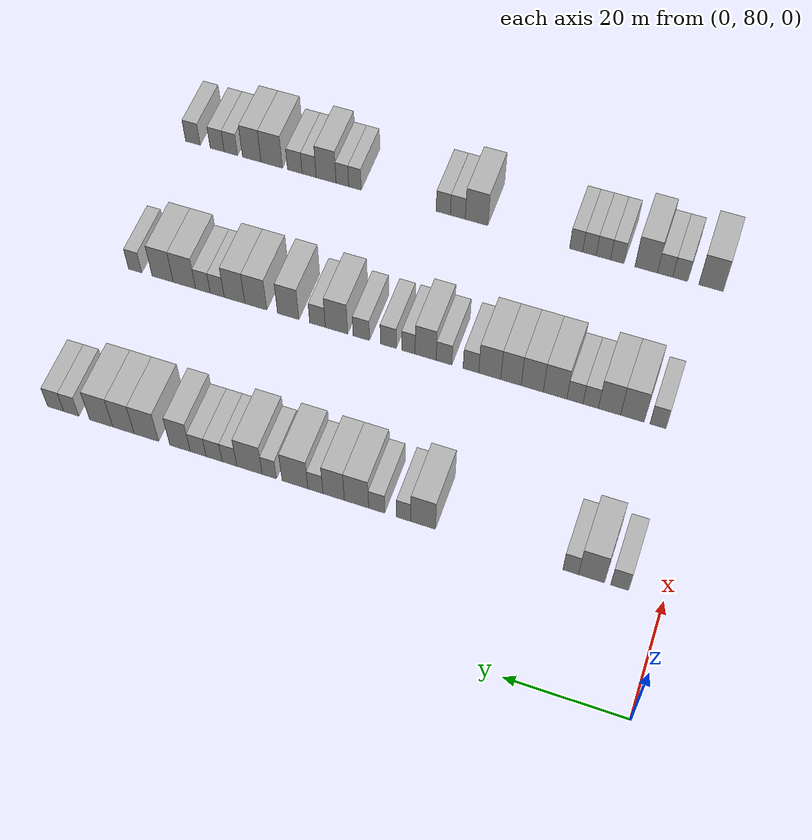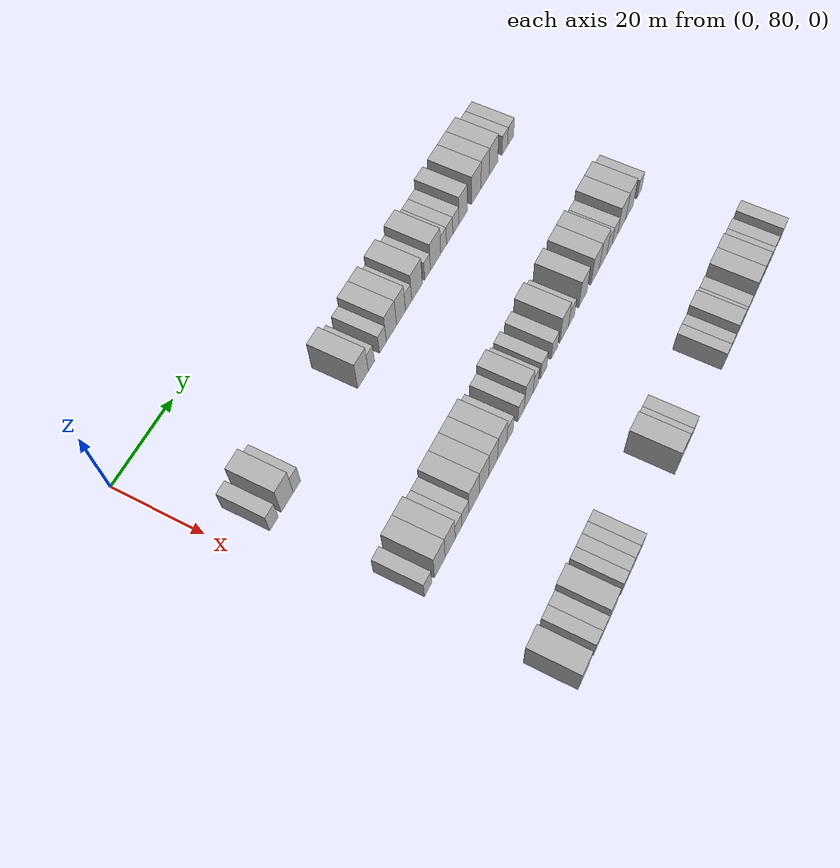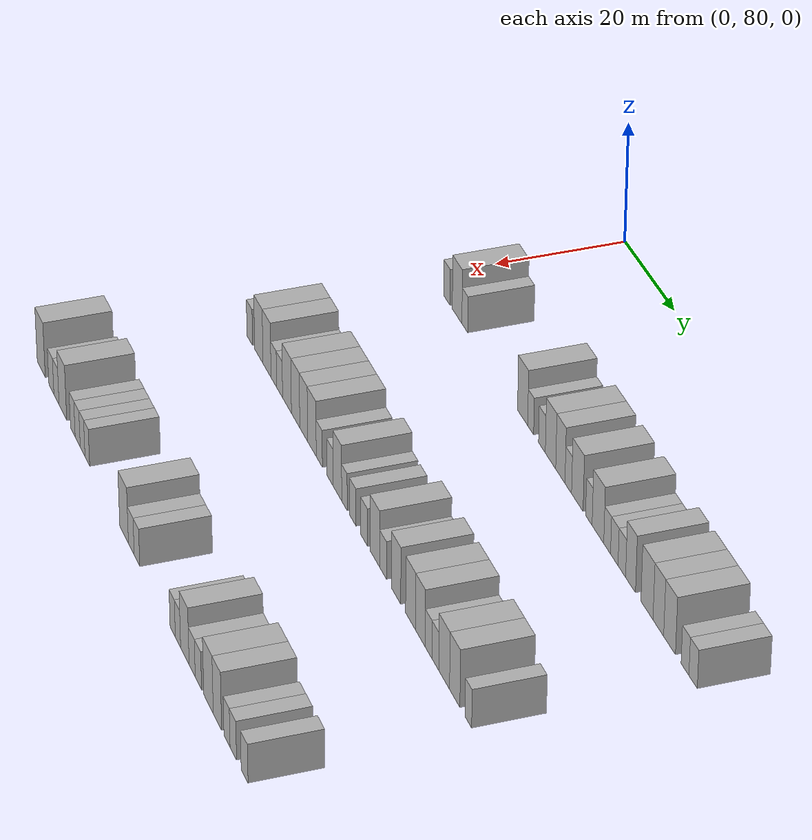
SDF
<sdf version="1.6">
 <world name="default">
  <model name="building_93">
   <static>1</static>
   <pose>25.0000 87.1373 0 0.000000 0.000000 0.000000</pose>
   <link name="link">
    <pose>0 0 3.00 0 0 0</pose>
    <collision name="collision"><geometry><box><size>10.0000 2.8961 6.0000</size></box></geometry></collision>
    <visual name="visual">
     <cast_shadows>0</cast_shadows>
     <geometry><box><size>10.0000 2.8961 6.0000</size></box></geometry>
     <material>
      <script>
       <uri>model://HANNAS_wall/materials/scripts</uri>
       <uri>model://HANNAS_wall/materials/textures</uri>
       <name>vrc/HANNAS_wall</name>
      </script>
     </material>
    </visual>
   </link>
  </model>
  <model name="building_94">
   <static>1</static>
   <pose>25.0000 91.6928 0 0.000000 0.000000 0.000000</pose>
   <link name="link">
    <pose>0 0 4.50 0 0 0</pose>
    <collision name="collision"><geometry><box><size>10.0000 4.2150 9.0000</size></box></geometry></collision>
    <visual name="visual">
     <cast_shadows>0</cast_shadows>
     <geometry><box><size>10.0000 4.2150 9.0000</size></box></geometry>
     <material>
      <script>
       <uri>model://HANNAS_wall/materials/scripts</uri>
       <uri>model://HANNAS_wall/materials/textures</uri>
       <name>vrc/HANNAS_wall</name>
      </script>
     </material>
    </visual>
   </link>
  </model>
  <model name="building_95">
   <static>1</static>
   <pose>25.0000 95.0808 0 0.000000 0.000000 0.000000</pose>
   <link name="link">
    <pose>0 0 3.00 0 0 0</pose>
    <collision name="collision"><geometry><box><size>10.0000 2.5612 6.0000</size></box></geometry></collision>
    <visual name="visual">
     <cast_shadows>0</cast_shadows>
     <geometry><box><size>10.0000 2.5612 6.0000</size></box></geometry>
     <material>
      <script>
       <uri>model://HANNAS_wall/materials/scripts</uri>
       <uri>model://HANNAS_wall/materials/textures</uri>
       <name>vrc/HANNAS_wall</name>
      </script>
     </material>
    </visual>
   </link>
  </model>
  <model name="building_96">
   <static>1</static>
   <pose>25.0000 119.5872 0 0.000000 0.000000 0.000000</pose>
   <link name="link">
    <pose>0 0 4.50 0 0 0</pose>
    <collision name="collision"><geometry><box><size>10.0000 4.1505 9.0000</size></box></geometry></collision>
    <visual name="visual">
     <cast_shadows>0</cast_shadows>
     <geometry><box><size>10.0000 4.1505 9.0000</size></box></geometry>
     <material>
      <script>
       <uri>model://HANNAS_wall/materials/scripts</uri>
       <uri>model://HANNAS_wall/materials/textures</uri>
       <name>vrc/HANNAS_wall</name>
      </script>
     </material>
    </visual>
   </link>
  </model>
  <model name="building_97">
   <static>1</static>
   <pose>25.0000 122.8813 0 0.000000 0.000000 0.000000</pose>
   <link name="link">
    <pose>0 0 3.00 0 0 0</pose>
    <collision name="collision"><geometry><box><size>10.0000 2.4377 6.0000</size></box></geometry></collision>
    <visual name="visual">
     <cast_shadows>0</cast_shadows>
     <geometry><box><size>10.0000 2.4377 6.0000</size></box></geometry>
     <material>
      <script>
       <uri>model://HANNAS_wall/materials/scripts</uri>
       <uri>model://HANNAS_wall/materials/textures</uri>
       <name>vrc/HANNAS_wall</name>
      </script>
     </material>
    </visual>
   </link>
  </model>
  <model name="building_98">
   <static>1</static>
   <pose>25.0000 127.4716 0 0.000000 0.000000 0.000000</pose>
   <link name="link">
    <pose>0 0 3.00 0 0 0</pose>
    <collision name="collision"><geometry><box><size>10.0000 2.7429 6.0000</size></box></geometry></collision>
    <visual name="visual">
     <cast_shadows>0</cast_shadows>
     <geometry><box><size>10.0000 2.7429 6.0000</size></box></geometry>
     <material>
      <script>
       <uri>model://HANNAS_wall/materials/scripts</uri>
       <uri>model://HANNAS_wall/materials/textures</uri>
       <name>vrc/HANNAS_wall</name>
      </script>
     </material>
    </visual>
   </link>
  </model>
  <model name="building_99">
   <static>1</static>
   <pose>25.0000 130.9281 0 0.000000 0.000000 0.000000</pose>
   <link name="link">
    <pose>0 0 4.50 0 0 0</pose>
    <collision name="collision"><geometry><box><size>10.0000 4.1701 9.0000</size></box></geometry></collision>
    <visual name="visual">
     <cast_shadows>0</cast_shadows>
     <geometry><box><size>10.0000 4.1701 9.0000</size></box></geometry>
     <material>
      <script>
       <uri>model://HANNAS_wall/materials/scripts</uri>
       <uri>model://HANNAS_wall/materials/textures</uri>
       <name>vrc/HANNAS_wall</name>
      </script>
     </material>
    </visual>
   </link>
  </model>
  <model name="building_100">
   <static>1</static>
   <pose>25.0000 134.8508 0 0.000000 0.000000 0.000000</pose>
   <link name="link">
    <pose>0 0 4.50 0 0 0</pose>
    <collision name="collision"><geometry><box><size>10.0000 3.6753 9.0000</size></box></geometry></collision>
    <visual name="visual">
     <cast_shadows>0</cast_shadows>
     <geometry><box><size>10.0000 3.6753 9.0000</size></box></geometry>
     <material>
      <script>
       <uri>model://HANNAS_wall/materials/scripts</uri>
       <uri>model://HANNAS_wall/materials/textures</uri>
       <name>vrc/HANNAS_wall</name>
      </script>
     </material>
    </visual>
   </link>
  </model>
  <model name="building_101">
   <static>1</static>
   <pose>25.0000 137.9873 0 0.000000 0.000000 0.000000</pose>
   <link name="link">
    <pose>0 0 3.00 0 0 0</pose>
    <collision name="collision"><geometry><box><size>10.0000 2.5976 6.0000</size></box></geometry></collision>
    <visual name="visual">
     <cast_shadows>0</cast_shadows>
     <geometry><box><size>10.0000 2.5976 6.0000</size></box></geometry>
     <material>
      <script>
       <uri>model://HANNAS_wall/materials/scripts</uri>
       <uri>model://HANNAS_wall/materials/textures</uri>
       <name>vrc/HANNAS_wall</name>
      </script>
     </material>
    </visual>
   </link>
  </model>
  <model name="building_102">
   <static>1</static>
   <pose>25.0000 141.5338 0 0.000000 0.000000 0.000000</pose>
   <link name="link">
    <pose>0 0 4.50 0 0 0</pose>
    <collision name="collision"><geometry><box><size>10.0000 4.4953 9.0000</size></box></geometry></collision>
    <visual name="visual">
     <cast_shadows>0</cast_shadows>
     <geometry><box><size>10.0000 4.4953 9.0000</size></box></geometry>
     <material>
      <script>
       <uri>model://HANNAS_wall/materials/scripts</uri>
       <uri>model://HANNAS_wall/materials/textures</uri>
       <name>vrc/HANNAS_wall</name>
      </script>
     </material>
    </visual>
   </link>
  </model>
  <model name="building_103">
   <static>1</static>
   <pose>25.0000 146.0297 0 0.000000 0.000000 0.000000</pose>
   <link name="link">
    <pose>0 0 3.00 0 0 0</pose>
    <collision name="collision"><geometry><box><size>10.0000 2.4965 6.0000</size></box></geometry></collision>
    <visual name="visual">
     <cast_shadows>0</cast_shadows>
     <geometry><box><size>10.0000 2.4965 6.0000</size></box></geometry>
     <material>
      <script>
       <uri>model://HANNAS_wall/materials/scripts</uri>
       <uri>model://HANNAS_wall/materials/textures</uri>
       <name>vrc/HANNAS_wall</name>
      </script>
     </material>
    </visual>
   </link>
  </model>
  <model name="building_104">
   <static>1</static>
   <pose>25.0000 149.5130 0 0.000000 0.000000 0.000000</pose>
   <link name="link">
    <pose>0 0 4.50 0 0 0</pose>
    <collision name="collision"><geometry><box><size>10.0000 4.4702 9.0000</size></box></geometry></collision>
    <visual name="visual">
     <cast_shadows>0</cast_shadows>
     <geometry><box><size>10.0000 4.4702 9.0000</size></box></geometry>
     <material>
      <script>
       <uri>model://HANNAS_wall/materials/scripts</uri>
       <uri>model://HANNAS_wall/materials/textures</uri>
       <name>vrc/HANNAS_wall</name>
      </script>
     </material>
    </visual>
   </link>
  </model>
  <model name="building_105">
   <static>1</static>
   <pose>25.0000 153.0343 0 0.000000 0.000000 0.000000</pose>
   <link name="link">
    <pose>0 0 3.00 0 0 0</pose>
    <collision name="collision"><geometry><box><size>10.0000 2.5722 6.0000</size></box></geometry></collision>
    <visual name="visual">
     <cast_shadows>0</cast_shadows>
     <geometry><box><size>10.0000 2.5722 6.0000</size></box></geometry>
     <material>
      <script>
       <uri>model://HANNAS_wall/materials/scripts</uri>
       <uri>model://HANNAS_wall/materials/textures</uri>
       <name>vrc/HANNAS_wall</name>
      </script>
     </material>
    </visual>
   </link>
  </model>
  <model name="building_106">
   <static>1</static>
   <pose>25.0000 155.7408 0 0.000000 0.000000 0.000000</pose>
   <link name="link">
    <pose>0 0 3.00 0 0 0</pose>
    <collision name="collision"><geometry><box><size>10.0000 2.8409 6.0000</size></box></geometry></collision>
    <visual name="visual">
     <cast_shadows>0</cast_shadows>
     <geometry><box><size>10.0000 2.8409 6.0000</size></box></geometry>
     <material>
      <script>
       <uri>model://HANNAS_wall/materials/scripts</uri>
       <uri>model://HANNAS_wall/materials/textures</uri>
       <name>vrc/HANNAS_wall</name>
      </script>
     </material>
    </visual>
   </link>
  </model>
  <model name="building_107">
   <static>1</static>
   <pose>25.0000 158.5754 0 0.000000 0.000000 0.000000</pose>
   <link name="link">
    <pose>0 0 3.00 0 0 0</pose>
    <collision name="collision"><geometry><box><size>10.0000 2.8282 6.0000</size></box></geometry></collision>
    <visual name="visual">
     <cast_shadows>0</cast_shadows>
     <geometry><box><size>10.0000 2.8282 6.0000</size></box></geometry>
     <material>
      <script>
       <uri>model://HANNAS_wall/materials/scripts</uri>
       <uri>model://HANNAS_wall/materials/textures</uri>
       <name>vrc/HANNAS_wall</name>
      </script>
     </material>
    </visual>
   </link>
  </model>
  <model name="building_108">
   <static>1</static>
   <pose>25.0000 161.8272 0 0.000000 0.000000 0.000000</pose>
   <link name="link">
    <pose>0 0 4.50 0 0 0</pose>
    <collision name="collision"><geometry><box><size>10.0000 3.6753 9.0000</size></box></geometry></collision>
    <visual name="visual">
     <cast_shadows>0</cast_shadows>
     <geometry><box><size>10.0000 3.6753 9.0000</size></box></geometry>
     <material>
      <script>
       <uri>model://HANNAS_wall/materials/scripts</uri>
       <uri>model://HANNAS_wall/materials/textures</uri>
       <name>vrc/HANNAS_wall</name>
      </script>
     </material>
    </visual>
   </link>
  </model>
  <model name="building_109">
   <static>1</static>
   <pose>25.0000 167.8753 0 0.000000 0.000000 0.000000</pose>
   <link name="link">
    <pose>0 0 4.50 0 0 0</pose>
    <collision name="collision"><geometry><box><size>10.0000 4.4208 9.0000</size></box></geometry></collision>
    <visual name="visual">
     <cast_shadows>0</cast_shadows>
     <geometry><box><size>10.0000 4.4208 9.0000</size></box></geometry>
     <material>
      <script>
       <uri>model://HANNAS_wall/materials/scripts</uri>
       <uri>model://HANNAS_wall/materials/textures</uri>
       <name>vrc/HANNAS_wall</name>
      </script>
     </material>
    </visual>
   </link>
  </model>
  <model name="building_110">
   <static>1</static>
   <pose>25.0000 172.0205 0 0.000000 0.000000 0.000000</pose>
   <link name="link">
    <pose>0 0 4.50 0 0 0</pose>
    <collision name="collision"><geometry><box><size>10.0000 3.8697 9.0000</size></box></geometry></collision>
    <visual name="visual">
     <cast_shadows>0</cast_shadows>
     <geometry><box><size>10.0000 3.8697 9.0000</size></box></geometry>
     <material>
      <script>
       <uri>model://HANNAS_wall/materials/scripts</uri>
       <uri>model://HANNAS_wall/materials/textures</uri>
       <name>vrc/HANNAS_wall</name>
      </script>
     </material>
    </visual>
   </link>
  </model>
  <model name="building_111">
   <static>1</static>
   <pose>25.0000 176.0696 0 0.000000 0.000000 0.000000</pose>
   <link name="link">
    <pose>0 0 4.50 0 0 0</pose>
    <collision name="collision"><geometry><box><size>10.0000 4.2285 9.0000</size></box></geometry></collision>
    <visual name="visual">
     <cast_shadows>0</cast_shadows>
     <geometry><box><size>10.0000 4.2285 9.0000</size></box></geometry>
     <material>
      <script>
       <uri>model://HANNAS_wall/materials/scripts</uri>
       <uri>model://HANNAS_wall/materials/textures</uri>
       <name>vrc/HANNAS_wall</name>
      </script>
     </material>
    </visual>
   </link>
  </model>
  <model name="building_112">
   <static>1</static>
   <pose>25.0000 181.5627 0 0.000000 0.000000 0.000000</pose>
   <link name="link">
    <pose>0 0 3.00 0 0 0</pose>
    <collision name="collision"><geometry><box><size>10.0000 2.7576 6.0000</size></box></geometry></collision>
    <visual name="visual">
     <cast_shadows>0</cast_shadows>
     <geometry><box><size>10.0000 2.7576 6.0000</size></box></geometry>
     <material>
      <script>
       <uri>model://HANNAS_wall/materials/scripts</uri>
       <uri>model://HANNAS_wall/materials/textures</uri>
       <name>vrc/HANNAS_wall</name>
      </script>
     </material>
    </visual>
   </link>
  </model>
  <model name="building_113">
   <static>1</static>
   <pose>25.0000 184.4228 0 0.000000 0.000000 0.000000</pose>
   <link name="link">
    <pose>0 0 3.00 0 0 0</pose>
    <collision name="collision"><geometry><box><size>10.0000 2.9626 6.0000</size></box></geometry></collision>
    <visual name="visual">
     <cast_shadows>0</cast_shadows>
     <geometry><box><size>10.0000 2.9626 6.0000</size></box></geometry>
     <material>
      <script>
       <uri>model://HANNAS_wall/materials/scripts</uri>
       <uri>model://HANNAS_wall/materials/textures</uri>
       <name>vrc/HANNAS_wall</name>
      </script>
     </material>
    </visual>
   </link>
  </model>
  <model name="building_226">
   <static>1</static>
   <pose>55.0000 88.6630 0 0.000000 0.000000 0.000000</pose>
   <link name="link">
    <pose>0 0 3.00 0 0 0</pose>
    <collision name="collision"><geometry><box><size>10.0000 2.7535 6.0000</size></box></geometry></collision>
    <visual name="visual">
     <cast_shadows>0</cast_shadows>
     <geometry><box><size>10.0000 2.7535 6.0000</size></box></geometry>
     <material>
      <script>
       <uri>model://HANNAS_wall/materials/scripts</uri>
       <uri>model://HANNAS_wall/materials/textures</uri>
       <name>vrc/HANNAS_wall</name>
      </script>
     </material>
    </visual>
   </link>
  </model>
  <model name="building_227">
   <static>1</static>
   <pose>55.0000 93.0524 0 0.000000 0.000000 0.000000</pose>
   <link name="link">
    <pose>0 0 4.50 0 0 0</pose>
    <collision name="collision"><geometry><box><size>10.0000 4.0254 9.0000</size></box></geometry></collision>
    <visual name="visual">
     <cast_shadows>0</cast_shadows>
     <geometry><box><size>10.0000 4.0254 9.0000</size></box></geometry>
     <material>
      <script>
       <uri>model://HANNAS_wall/materials/scripts</uri>
       <uri>model://HANNAS_wall/materials/textures</uri>
       <name>vrc/HANNAS_wall</name>
      </script>
     </material>
    </visual>
   </link>
  </model>
  <model name="building_228">
   <static>1</static>
   <pose>55.0000 96.9843 0 0.000000 0.000000 0.000000</pose>
   <link name="link">
    <pose>0 0 4.50 0 0 0</pose>
    <collision name="collision"><geometry><box><size>10.0000 3.8385 9.0000</size></box></geometry></collision>
    <visual name="visual">
     <cast_shadows>0</cast_shadows>
     <geometry><box><size>10.0000 3.8385 9.0000</size></box></geometry>
     <material>
      <script>
       <uri>model://HANNAS_wall/materials/scripts</uri>
       <uri>model://HANNAS_wall/materials/textures</uri>
       <name>vrc/HANNAS_wall</name>
      </script>
     </material>
    </visual>
   </link>
  </model>
  <model name="building_229">
   <static>1</static>
   <pose>55.0000 100.2398 0 0.000000 0.000000 0.000000</pose>
   <link name="link">
    <pose>0 0 3.00 0 0 0</pose>
    <collision name="collision"><geometry><box><size>10.0000 2.6724 6.0000</size></box></geometry></collision>
    <visual name="visual">
     <cast_shadows>0</cast_shadows>
     <geometry><box><size>10.0000 2.6724 6.0000</size></box></geometry>
     <material>
      <script>
       <uri>model://HANNAS_wall/materials/scripts</uri>
       <uri>model://HANNAS_wall/materials/textures</uri>
       <name>vrc/HANNAS_wall</name>
      </script>
     </material>
    </visual>
   </link>
  </model>
  <model name="building_230">
   <static>1</static>
   <pose>55.0000 102.9791 0 0.000000 0.000000 0.000000</pose>
   <link name="link">
    <pose>0 0 3.00 0 0 0</pose>
    <collision name="collision"><geometry><box><size>10.0000 2.8063 6.0000</size></box></geometry></collision>
    <visual name="visual">
     <cast_shadows>0</cast_shadows>
     <geometry><box><size>10.0000 2.8063 6.0000</size></box></geometry>
     <material>
      <script>
       <uri>model://HANNAS_wall/materials/scripts</uri>
       <uri>model://HANNAS_wall/materials/textures</uri>
       <name>vrc/HANNAS_wall</name>
      </script>
     </material>
    </visual>
   </link>
  </model>
  <model name="building_231">
   <static>1</static>
   <pose>55.0000 106.4501 0 0.000000 0.000000 0.000000</pose>
   <link name="link">
    <pose>0 0 4.50 0 0 0</pose>
    <collision name="collision"><geometry><box><size>10.0000 4.1358 9.0000</size></box></geometry></collision>
    <visual name="visual">
     <cast_shadows>0</cast_shadows>
     <geometry><box><size>10.0000 4.1358 9.0000</size></box></geometry>
     <material>
      <script>
       <uri>model://HANNAS_wall/materials/scripts</uri>
       <uri>model://HANNAS_wall/materials/textures</uri>
       <name>vrc/HANNAS_wall</name>
      </script>
     </material>
    </visual>
   </link>
  </model>
  <model name="building_232">
   <static>1</static>
   <pose>55.0000 110.4618 0 0.000000 0.000000 0.000000</pose>
   <link name="link">
    <pose>0 0 4.50 0 0 0</pose>
    <collision name="collision"><geometry><box><size>10.0000 3.8875 9.0000</size></box></geometry></collision>
    <visual name="visual">
     <cast_shadows>0</cast_shadows>
     <geometry><box><size>10.0000 3.8875 9.0000</size></box></geometry>
     <material>
      <script>
       <uri>model://HANNAS_wall/materials/scripts</uri>
       <uri>model://HANNAS_wall/materials/textures</uri>
       <name>vrc/HANNAS_wall</name>
      </script>
     </material>
    </visual>
   </link>
  </model>
  <model name="building_233">
   <static>1</static>
   <pose>55.0000 114.2141 0 0.000000 0.000000 0.000000</pose>
   <link name="link">
    <pose>0 0 4.50 0 0 0</pose>
    <collision name="collision"><geometry><box><size>10.0000 3.6172 9.0000</size></box></geometry></collision>
    <visual name="visual">
     <cast_shadows>0</cast_shadows>
     <geometry><box><size>10.0000 3.6172 9.0000</size></box></geometry>
     <material>
      <script>
       <uri>model://HANNAS_wall/materials/scripts</uri>
       <uri>model://HANNAS_wall/materials/textures</uri>
       <name>vrc/HANNAS_wall</name>
      </script>
     </material>
    </visual>
   </link>
  </model>
  <model name="building_234">
   <static>1</static>
   <pose>55.0000 117.9746 0 0.000000 0.000000 0.000000</pose>
   <link name="link">
    <pose>0 0 4.50 0 0 0</pose>
    <collision name="collision"><geometry><box><size>10.0000 3.9037 9.0000</size></box></geometry></collision>
    <visual name="visual">
     <cast_shadows>0</cast_shadows>
     <geometry><box><size>10.0000 3.9037 9.0000</size></box></geometry>
     <material>
      <script>
       <uri>model://HANNAS_wall/materials/scripts</uri>
       <uri>model://HANNAS_wall/materials/textures</uri>
       <name>vrc/HANNAS_wall</name>
      </script>
     </material>
    </visual>
   </link>
  </model>
  <model name="building_235">
   <static>1</static>
   <pose>55.0000 121.3089 0 0.000000 0.000000 0.000000</pose>
   <link name="link">
    <pose>0 0 3.00 0 0 0</pose>
    <collision name="collision"><geometry><box><size>10.0000 2.7649 6.0000</size></box></geometry></collision>
    <visual name="visual">
     <cast_shadows>0</cast_shadows>
     <geometry><box><size>10.0000 2.7649 6.0000</size></box></geometry>
     <material>
      <script>
       <uri>model://HANNAS_wall/materials/scripts</uri>
       <uri>model://HANNAS_wall/materials/textures</uri>
       <name>vrc/HANNAS_wall</name>
      </script>
     </material>
    </visual>
   </link>
  </model>
  <model name="building_236">
   <static>1</static>
   <pose>55.0000 126.1008 0 0.000000 0.000000 0.000000</pose>
   <link name="link">
    <pose>0 0 3.00 0 0 0</pose>
    <collision name="collision"><geometry><box><size>10.0000 2.8190 6.0000</size></box></geometry></collision>
    <visual name="visual">
     <cast_shadows>0</cast_shadows>
     <geometry><box><size>10.0000 2.8190 6.0000</size></box></geometry>
     <material>
      <script>
       <uri>model://HANNAS_wall/materials/scripts</uri>
       <uri>model://HANNAS_wall/materials/textures</uri>
       <name>vrc/HANNAS_wall</name>
      </script>
     </material>
    </visual>
   </link>
  </model>
  <model name="building_237">
   <static>1</static>
   <pose>55.0000 129.4103 0 0.000000 0.000000 0.000000</pose>
   <link name="link">
    <pose>0 0 4.50 0 0 0</pose>
    <collision name="collision"><geometry><box><size>10.0000 3.7999 9.0000</size></box></geometry></collision>
    <visual name="visual">
     <cast_shadows>0</cast_shadows>
     <geometry><box><size>10.0000 3.7999 9.0000</size></box></geometry>
     <material>
      <script>
       <uri>model://HANNAS_wall/materials/scripts</uri>
       <uri>model://HANNAS_wall/materials/textures</uri>
       <name>vrc/HANNAS_wall</name>
      </script>
     </material>
    </visual>
   </link>
  </model>
  <model name="building_238">
   <static>1</static>
   <pose>55.0000 132.5195 0 0.000000 0.000000 0.000000</pose>
   <link name="link">
    <pose>0 0 3.00 0 0 0</pose>
    <collision name="collision"><geometry><box><size>10.0000 2.4186 6.0000</size></box></geometry></collision>
    <visual name="visual">
     <cast_shadows>0</cast_shadows>
     <geometry><box><size>10.0000 2.4186 6.0000</size></box></geometry>
     <material>
      <script>
       <uri>model://HANNAS_wall/materials/scripts</uri>
       <uri>model://HANNAS_wall/materials/textures</uri>
       <name>vrc/HANNAS_wall</name>
      </script>
     </material>
    </visual>
   </link>
  </model>
  <model name="building_239">
   <static>1</static>
   <pose>55.0000 136.1524 0 0.000000 0.000000 0.000000</pose>
   <link name="link">
    <pose>0 0 3.00 0 0 0</pose>
    <collision name="collision"><geometry><box><size>10.0000 2.8471 6.0000</size></box></geometry></collision>
    <visual name="visual">
     <cast_shadows>0</cast_shadows>
     <geometry><box><size>10.0000 2.8471 6.0000</size></box></geometry>
     <material>
      <script>
       <uri>model://HANNAS_wall/materials/scripts</uri>
       <uri>model://HANNAS_wall/materials/textures</uri>
       <name>vrc/HANNAS_wall</name>
      </script>
     </material>
    </visual>
   </link>
  </model>
  <model name="building_240">
   <static>1</static>
   <pose>55.0000 141.0695 0 0.000000 0.000000 0.000000</pose>
   <link name="link">
    <pose>0 0 3.00 0 0 0</pose>
    <collision name="collision"><geometry><box><size>10.0000 2.9872 6.0000</size></box></geometry></collision>
    <visual name="visual">
     <cast_shadows>0</cast_shadows>
     <geometry><box><size>10.0000 2.9872 6.0000</size></box></geometry>
     <material>
      <script>
       <uri>model://HANNAS_wall/materials/scripts</uri>
       <uri>model://HANNAS_wall/materials/textures</uri>
       <name>vrc/HANNAS_wall</name>
      </script>
     </material>
    </visual>
   </link>
  </model>
  <model name="building_241">
   <static>1</static>
   <pose>55.0000 145.6155 0 0.000000 0.000000 0.000000</pose>
   <link name="link">
    <pose>0 0 4.50 0 0 0</pose>
    <collision name="collision"><geometry><box><size>10.0000 4.1048 9.0000</size></box></geometry></collision>
    <visual name="visual">
     <cast_shadows>0</cast_shadows>
     <geometry><box><size>10.0000 4.1048 9.0000</size></box></geometry>
     <material>
      <script>
       <uri>model://HANNAS_wall/materials/scripts</uri>
       <uri>model://HANNAS_wall/materials/textures</uri>
       <name>vrc/HANNAS_wall</name>
      </script>
     </material>
    </visual>
   </link>
  </model>
  <model name="building_242">
   <static>1</static>
   <pose>55.0000 149.1084 0 0.000000 0.000000 0.000000</pose>
   <link name="link">
    <pose>0 0 3.00 0 0 0</pose>
    <collision name="collision"><geometry><box><size>10.0000 2.8810 6.0000</size></box></geometry></collision>
    <visual name="visual">
     <cast_shadows>0</cast_shadows>
     <geometry><box><size>10.0000 2.8810 6.0000</size></box></geometry>
     <material>
      <script>
       <uri>model://HANNAS_wall/materials/scripts</uri>
       <uri>model://HANNAS_wall/materials/textures</uri>
       <name>vrc/HANNAS_wall</name>
      </script>
     </material>
    </visual>
   </link>
  </model>
  <model name="building_243">
   <static>1</static>
   <pose>55.0000 154.5390 0 0.000000 0.000000 0.000000</pose>
   <link name="link">
    <pose>0 0 4.50 0 0 0</pose>
    <collision name="collision"><geometry><box><size>10.0000 3.9802 9.0000</size></box></geometry></collision>
    <visual name="visual">
     <cast_shadows>0</cast_shadows>
     <geometry><box><size>10.0000 3.9802 9.0000</size></box></geometry>
     <material>
      <script>
       <uri>model://HANNAS_wall/materials/scripts</uri>
       <uri>model://HANNAS_wall/materials/textures</uri>
       <name>vrc/HANNAS_wall</name>
      </script>
     </material>
    </visual>
   </link>
  </model>
  <model name="building_244">
   <static>1</static>
   <pose>55.0000 160.5846 0 0.000000 0.000000 0.000000</pose>
   <link name="link">
    <pose>0 0 4.50 0 0 0</pose>
    <collision name="collision"><geometry><box><size>10.0000 4.1109 9.0000</size></box></geometry></collision>
    <visual name="visual">
     <cast_shadows>0</cast_shadows>
     <geometry><box><size>10.0000 4.1109 9.0000</size></box></geometry>
     <material>
      <script>
       <uri>model://HANNAS_wall/materials/scripts</uri>
       <uri>model://HANNAS_wall/materials/textures</uri>
       <name>vrc/HANNAS_wall</name>
      </script>
     </material>
    </visual>
   </link>
  </model>
  <model name="building_245">
   <static>1</static>
   <pose>55.0000 164.5902 0 0.000000 0.000000 0.000000</pose>
   <link name="link">
    <pose>0 0 4.50 0 0 0</pose>
    <collision name="collision"><geometry><box><size>10.0000 3.9003 9.0000</size></box></geometry></collision>
    <visual name="visual">
     <cast_shadows>0</cast_shadows>
     <geometry><box><size>10.0000 3.9003 9.0000</size></box></geometry>
     <material>
      <script>
       <uri>model://HANNAS_wall/materials/scripts</uri>
       <uri>model://HANNAS_wall/materials/textures</uri>
       <name>vrc/HANNAS_wall</name>
      </script>
     </material>
    </visual>
   </link>
  </model>
  <model name="building_246">
   <static>1</static>
   <pose>55.0000 167.8611 0 0.000000 0.000000 0.000000</pose>
   <link name="link">
    <pose>0 0 3.00 0 0 0</pose>
    <collision name="collision"><geometry><box><size>10.0000 2.6415 6.0000</size></box></geometry></collision>
    <visual name="visual">
     <cast_shadows>0</cast_shadows>
     <geometry><box><size>10.0000 2.6415 6.0000</size></box></geometry>
     <material>
      <script>
       <uri>model://HANNAS_wall/materials/scripts</uri>
       <uri>model://HANNAS_wall/materials/textures</uri>
       <name>vrc/HANNAS_wall</name>
      </script>
     </material>
    </visual>
   </link>
  </model>
  <model name="building_247">
   <static>1</static>
   <pose>55.0000 170.5727 0 0.000000 0.000000 0.000000</pose>
   <link name="link">
    <pose>0 0 3.00 0 0 0</pose>
    <collision name="collision"><geometry><box><size>10.0000 2.7818 6.0000</size></box></geometry></collision>
    <visual name="visual">
     <cast_shadows>0</cast_shadows>
     <geometry><box><size>10.0000 2.7818 6.0000</size></box></geometry>
     <material>
      <script>
       <uri>model://HANNAS_wall/materials/scripts</uri>
       <uri>model://HANNAS_wall/materials/textures</uri>
       <name>vrc/HANNAS_wall</name>
      </script>
     </material>
    </visual>
   </link>
  </model>
  <model name="building_248">
   <static>1</static>
   <pose>55.0000 174.0974 0 0.000000 0.000000 0.000000</pose>
   <link name="link">
    <pose>0 0 4.50 0 0 0</pose>
    <collision name="collision"><geometry><box><size>10.0000 4.2675 9.0000</size></box></geometry></collision>
    <visual name="visual">
     <cast_shadows>0</cast_shadows>
     <geometry><box><size>10.0000 4.2675 9.0000</size></box></geometry>
     <material>
      <script>
       <uri>model://HANNAS_wall/materials/scripts</uri>
       <uri>model://HANNAS_wall/materials/textures</uri>
       <name>vrc/HANNAS_wall</name>
      </script>
     </material>
    </visual>
   </link>
  </model>
  <model name="building_249">
   <static>1</static>
   <pose>55.0000 178.2537 0 0.000000 0.000000 0.000000</pose>
   <link name="link">
    <pose>0 0 4.50 0 0 0</pose>
    <collision name="collision"><geometry><box><size>10.0000 4.0451 9.0000</size></box></geometry></collision>
    <visual name="visual">
     <cast_shadows>0</cast_shadows>
     <geometry><box><size>10.0000 4.0451 9.0000</size></box></geometry>
     <material>
      <script>
       <uri>model://HANNAS_wall/materials/scripts</uri>
       <uri>model://HANNAS_wall/materials/textures</uri>
       <name>vrc/HANNAS_wall</name>
      </script>
     </material>
    </visual>
   </link>
  </model>
  <model name="building_250">
   <static>1</static>
   <pose>55.0000 183.5476 0 0.000000 0.000000 0.000000</pose>
   <link name="link">
    <pose>0 0 3.00 0 0 0</pose>
    <collision name="collision"><geometry><box><size>10.0000 2.5427 6.0000</size></box></geometry></collision>
    <visual name="visual">
     <cast_shadows>0</cast_shadows>
     <geometry><box><size>10.0000 2.5427 6.0000</size></box></geometry>
     <material>
      <script>
       <uri>model://HANNAS_wall/materials/scripts</uri>
       <uri>model://HANNAS_wall/materials/textures</uri>
       <name>vrc/HANNAS_wall</name>
      </script>
     </material>
    </visual>
   </link>
  </model>
  <model name="building_361">
   <static>1</static>
   <pose>85.0000 86.8051 0 0.000000 0.000000 0.000000</pose>
   <link name="link">
    <pose>0 0 4.50 0 0 0</pose>
    <collision name="collision"><geometry><box><size>10.0000 4.3663 9.0000</size></box></geometry></collision>
    <visual name="visual">
     <cast_shadows>0</cast_shadows>
     <geometry><box><size>10.0000 4.3663 9.0000</size></box></geometry>
     <material>
      <script>
       <uri>model://HANNAS_wall/materials/scripts</uri>
       <uri>model://HANNAS_wall/materials/textures</uri>
       <name>vrc/HANNAS_wall</name>
      </script>
     </material>
    </visual>
   </link>
  </model>
  <model name="building_362">
   <static>1</static>
   <pose>85.0000 92.3389 0 0.000000 0.000000 0.000000</pose>
   <link name="link">
    <pose>0 0 3.00 0 0 0</pose>
    <collision name="collision"><geometry><box><size>10.0000 2.7011 6.0000</size></box></geometry></collision>
    <visual name="visual">
     <cast_shadows>0</cast_shadows>
     <geometry><box><size>10.0000 2.7011 6.0000</size></box></geometry>
     <material>
      <script>
       <uri>model://HANNAS_wall/materials/scripts</uri>
       <uri>model://HANNAS_wall/materials/textures</uri>
       <name>vrc/HANNAS_wall</name>
      </script>
     </material>
    </visual>
   </link>
  </model>
  <model name="building_363">
   <static>1</static>
   <pose>85.0000 95.0799 0 0.000000 0.000000 0.000000</pose>
   <link name="link">
    <pose>0 0 3.00 0 0 0</pose>
    <collision name="collision"><geometry><box><size>10.0000 2.7810 6.0000</size></box></geometry></collision>
    <visual name="visual">
     <cast_shadows>0</cast_shadows>
     <geometry><box><size>10.0000 2.7810 6.0000</size></box></geometry>
     <material>
      <script>
       <uri>model://HANNAS_wall/materials/scripts</uri>
       <uri>model://HANNAS_wall/materials/textures</uri>
       <name>vrc/HANNAS_wall</name>
      </script>
     </material>
    </visual>
   </link>
  </model>
  <model name="building_364">
   <static>1</static>
   <pose>85.0000 98.5155 0 0.000000 0.000000 0.000000</pose>
   <link name="link">
    <pose>0 0 4.50 0 0 0</pose>
    <collision name="collision"><geometry><box><size>10.0000 4.0902 9.0000</size></box></geometry></collision>
    <visual name="visual">
     <cast_shadows>0</cast_shadows>
     <geometry><box><size>10.0000 4.0902 9.0000</size></box></geometry>
     <material>
      <script>
       <uri>model://HANNAS_wall/materials/scripts</uri>
       <uri>model://HANNAS_wall/materials/textures</uri>
       <name>vrc/HANNAS_wall</name>
      </script>
     </material>
    </visual>
   </link>
  </model>
  <model name="building_365">
   <static>1</static>
   <pose>85.0000 103.7927 0 0.000000 0.000000 0.000000</pose>
   <link name="link">
    <pose>0 0 3.00 0 0 0</pose>
    <collision name="collision"><geometry><box><size>10.0000 2.4641 6.0000</size></box></geometry></collision>
    <visual name="visual">
     <cast_shadows>0</cast_shadows>
     <geometry><box><size>10.0000 2.4641 6.0000</size></box></geometry>
     <material>
      <script>
       <uri>model://HANNAS_wall/materials/scripts</uri>
       <uri>model://HANNAS_wall/materials/textures</uri>
       <name>vrc/HANNAS_wall</name>
      </script>
     </material>
    </visual>
   </link>
  </model>
  <model name="building_366">
   <static>1</static>
   <pose>85.0000 106.3513 0 0.000000 0.000000 0.000000</pose>
   <link name="link">
    <pose>0 0 3.00 0 0 0</pose>
    <collision name="collision"><geometry><box><size>10.0000 2.6532 6.0000</size></box></geometry></collision>
    <visual name="visual">
     <cast_shadows>0</cast_shadows>
     <geometry><box><size>10.0000 2.6532 6.0000</size></box></geometry>
     <material>
      <script>
       <uri>model://HANNAS_wall/materials/scripts</uri>
       <uri>model://HANNAS_wall/materials/textures</uri>
       <name>vrc/HANNAS_wall</name>
      </script>
     </material>
    </visual>
   </link>
  </model>
  <model name="building_367">
   <static>1</static>
   <pose>85.0000 108.9141 0 0.000000 0.000000 0.000000</pose>
   <link name="link">
    <pose>0 0 3.00 0 0 0</pose>
    <collision name="collision"><geometry><box><size>10.0000 2.4725 6.0000</size></box></geometry></collision>
    <visual name="visual">
     <cast_shadows>0</cast_shadows>
     <geometry><box><size>10.0000 2.4725 6.0000</size></box></geometry>
     <material>
      <script>
       <uri>model://HANNAS_wall/materials/scripts</uri>
       <uri>model://HANNAS_wall/materials/textures</uri>
       <name>vrc/HANNAS_wall</name>
      </script>
     </material>
    </visual>
   </link>
  </model>
  <model name="building_368">
   <static>1</static>
   <pose>85.0000 111.3530 0 0.000000 0.000000 0.000000</pose>
   <link name="link">
    <pose>0 0 3.00 0 0 0</pose>
    <collision name="collision"><geometry><box><size>10.0000 2.4052 6.0000</size></box></geometry></collision>
    <visual name="visual">
     <cast_shadows>0</cast_shadows>
     <geometry><box><size>10.0000 2.4052 6.0000</size></box></geometry>
     <material>
      <script>
       <uri>model://HANNAS_wall/materials/scripts</uri>
       <uri>model://HANNAS_wall/materials/textures</uri>
       <name>vrc/HANNAS_wall</name>
      </script>
     </material>
    </visual>
   </link>
  </model>
  <model name="building_369">
   <static>1</static>
   <pose>85.0000 129.9576 0 0.000000 0.000000 0.000000</pose>
   <link name="link">
    <pose>0 0 4.50 0 0 0</pose>
    <collision name="collision"><geometry><box><size>10.0000 4.2680 9.0000</size></box></geometry></collision>
    <visual name="visual">
     <cast_shadows>0</cast_shadows>
     <geometry><box><size>10.0000 4.2680 9.0000</size></box></geometry>
     <material>
      <script>
       <uri>model://HANNAS_wall/materials/scripts</uri>
       <uri>model://HANNAS_wall/materials/textures</uri>
       <name>vrc/HANNAS_wall</name>
      </script>
     </material>
    </visual>
   </link>
  </model>
  <model name="building_370">
   <static>1</static>
   <pose>85.0000 133.5077 0 0.000000 0.000000 0.000000</pose>
   <link name="link">
    <pose>0 0 3.00 0 0 0</pose>
    <collision name="collision"><geometry><box><size>10.0000 2.8322 6.0000</size></box></geometry></collision>
    <visual name="visual">
     <cast_shadows>0</cast_shadows>
     <geometry><box><size>10.0000 2.8322 6.0000</size></box></geometry>
     <material>
      <script>
       <uri>model://HANNAS_wall/materials/scripts</uri>
       <uri>model://HANNAS_wall/materials/textures</uri>
       <name>vrc/HANNAS_wall</name>
      </script>
     </material>
    </visual>
   </link>
  </model>
  <model name="building_371">
   <static>1</static>
   <pose>85.0000 136.2712 0 0.000000 0.000000 0.000000</pose>
   <link name="link">
    <pose>0 0 3.00 0 0 0</pose>
    <collision name="collision"><geometry><box><size>10.0000 2.6947 6.0000</size></box></geometry></collision>
    <visual name="visual">
     <cast_shadows>0</cast_shadows>
     <geometry><box><size>10.0000 2.6947 6.0000</size></box></geometry>
     <material>
      <script>
       <uri>model://HANNAS_wall/materials/scripts</uri>
       <uri>model://HANNAS_wall/materials/textures</uri>
       <name>vrc/HANNAS_wall</name>
      </script>
     </material>
    </visual>
   </link>
  </model>
  <model name="building_372">
   <static>1</static>
   <pose>85.0000 153.2832 0 0.000000 0.000000 0.000000</pose>
   <link name="link">
    <pose>0 0 3.00 0 0 0</pose>
    <collision name="collision"><geometry><box><size>10.0000 2.4431 6.0000</size></box></geometry></collision>
    <visual name="visual">
     <cast_shadows>0</cast_shadows>
     <geometry><box><size>10.0000 2.4431 6.0000</size></box></geometry>
     <material>
      <script>
       <uri>model://HANNAS_wall/materials/scripts</uri>
       <uri>model://HANNAS_wall/materials/textures</uri>
       <name>vrc/HANNAS_wall</name>
      </script>
     </material>
    </visual>
   </link>
  </model>
  <model name="building_373">
   <static>1</static>
   <pose>85.0000 155.7285 0 0.000000 0.000000 0.000000</pose>
   <link name="link">
    <pose>0 0 3.00 0 0 0</pose>
    <collision name="collision"><geometry><box><size>10.0000 2.4474 6.0000</size></box></geometry></collision>
    <visual name="visual">
     <cast_shadows>0</cast_shadows>
     <geometry><box><size>10.0000 2.4474 6.0000</size></box></geometry>
     <material>
      <script>
       <uri>model://HANNAS_wall/materials/scripts</uri>
       <uri>model://HANNAS_wall/materials/textures</uri>
       <name>vrc/HANNAS_wall</name>
      </script>
     </material>
    </visual>
   </link>
  </model>
  <model name="building_374">
   <static>1</static>
   <pose>85.0000 158.9051 0 0.000000 0.000000 0.000000</pose>
   <link name="link">
    <pose>0 0 4.50 0 0 0</pose>
    <collision name="collision"><geometry><box><size>10.0000 3.9058 9.0000</size></box></geometry></collision>
    <visual name="visual">
     <cast_shadows>0</cast_shadows>
     <geometry><box><size>10.0000 3.9058 9.0000</size></box></geometry>
     <material>
      <script>
       <uri>model://HANNAS_wall/materials/scripts</uri>
       <uri>model://HANNAS_wall/materials/textures</uri>
       <name>vrc/HANNAS_wall</name>
      </script>
     </material>
    </visual>
   </link>
  </model>
  <model name="building_375">
   <static>1</static>
   <pose>85.0000 162.2417 0 0.000000 0.000000 0.000000</pose>
   <link name="link">
    <pose>0 0 3.00 0 0 0</pose>
    <collision name="collision"><geometry><box><size>10.0000 2.7675 6.0000</size></box></geometry></collision>
    <visual name="visual">
     <cast_shadows>0</cast_shadows>
     <geometry><box><size>10.0000 2.7675 6.0000</size></box></geometry>
     <material>
      <script>
       <uri>model://HANNAS_wall/materials/scripts</uri>
       <uri>model://HANNAS_wall/materials/textures</uri>
       <name>vrc/HANNAS_wall</name>
      </script>
     </material>
    </visual>
   </link>
  </model>
  <model name="building_376">
   <static>1</static>
   <pose>85.0000 165.0617 0 0.000000 0.000000 0.000000</pose>
   <link name="link">
    <pose>0 0 3.00 0 0 0</pose>
    <collision name="collision"><geometry><box><size>10.0000 2.8726 6.0000</size></box></geometry></collision>
    <visual name="visual">
     <cast_shadows>0</cast_shadows>
     <geometry><box><size>10.0000 2.8726 6.0000</size></box></geometry>
     <material>
      <script>
       <uri>model://HANNAS_wall/materials/scripts</uri>
       <uri>model://HANNAS_wall/materials/textures</uri>
       <name>vrc/HANNAS_wall</name>
      </script>
     </material>
    </visual>
   </link>
  </model>
  <model name="building_377">
   <static>1</static>
   <pose>85.0000 169.6184 0 0.000000 0.000000 0.000000</pose>
   <link name="link">
    <pose>0 0 4.50 0 0 0</pose>
    <collision name="collision"><geometry><box><size>10.0000 4.2406 9.0000</size></box></geometry></collision>
    <visual name="visual">
     <cast_shadows>0</cast_shadows>
     <geometry><box><size>10.0000 4.2406 9.0000</size></box></geometry>
     <material>
      <script>
       <uri>model://HANNAS_wall/materials/scripts</uri>
       <uri>model://HANNAS_wall/materials/textures</uri>
       <name>vrc/HANNAS_wall</name>
      </script>
     </material>
    </visual>
   </link>
  </model>
  <model name="building_378">
   <static>1</static>
   <pose>85.0000 173.5875 0 0.000000 0.000000 0.000000</pose>
   <link name="link">
    <pose>0 0 4.50 0 0 0</pose>
    <collision name="collision"><geometry><box><size>10.0000 3.6976 9.0000</size></box></geometry></collision>
    <visual name="visual">
     <cast_shadows>0</cast_shadows>
     <geometry><box><size>10.0000 3.6976 9.0000</size></box></geometry>
     <material>
      <script>
       <uri>model://HANNAS_wall/materials/scripts</uri>
       <uri>model://HANNAS_wall/materials/textures</uri>
       <name>vrc/HANNAS_wall</name>
      </script>
     </material>
    </visual>
   </link>
  </model>
  <model name="building_379">
   <static>1</static>
   <pose>85.0000 177.7770 0 0.000000 0.000000 0.000000</pose>
   <link name="link">
    <pose>0 0 3.00 0 0 0</pose>
    <collision name="collision"><geometry><box><size>10.0000 2.6815 6.0000</size></box></geometry></collision>
    <visual name="visual">
     <cast_shadows>0</cast_shadows>
     <geometry><box><size>10.0000 2.6815 6.0000</size></box></geometry>
     <material>
      <script>
       <uri>model://HANNAS_wall/materials/scripts</uri>
       <uri>model://HANNAS_wall/materials/textures</uri>
       <name>vrc/HANNAS_wall</name>
      </script>
     </material>
    </visual>
   </link>
  </model>
  <model name="building_380">
   <static>1</static>
   <pose>85.0000 180.5227 0 0.000000 0.000000 0.000000</pose>
   <link name="link">
    <pose>0 0 3.00 0 0 0</pose>
    <collision name="collision"><geometry><box><size>10.0000 2.8099 6.0000</size></box></geometry></collision>
    <visual name="visual">
     <cast_shadows>0</cast_shadows>
     <geometry><box><size>10.0000 2.8099 6.0000</size></box></geometry>
     <material>
      <script>
       <uri>model://HANNAS_wall/materials/scripts</uri>
       <uri>model://HANNAS_wall/materials/textures</uri>
       <name>vrc/HANNAS_wall</name>
      </script>
     </material>
    </visual>
   </link>
  </model>
  <model name="building_381">
   <static>1</static>
   <pose>85.0000 185.4062 0 0.000000 0.000000 0.000000</pose>
   <link name="link">
    <pose>0 0 3.00 0 0 0</pose>
    <collision name="collision"><geometry><box><size>10.0000 2.9571 6.0000</size></box></geometry></collision>
    <visual name="visual">
     <cast_shadows>0</cast_shadows>
     <geometry><box><size>10.0000 2.9571 6.0000</size></box></geometry>
     <material>
      <script>
       <uri>model://HANNAS_wall/materials/scripts</uri>
       <uri>model://HANNAS_wall/materials/textures</uri>
       <name>vrc/HANNAS_wall</name>
      </script>
     </material>
    </visual>
   </link>
  </model>
 </world>
</sdf>
